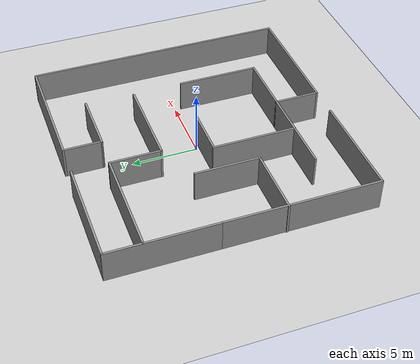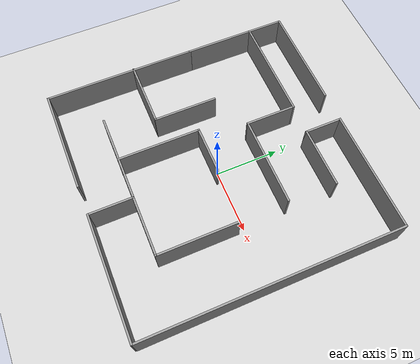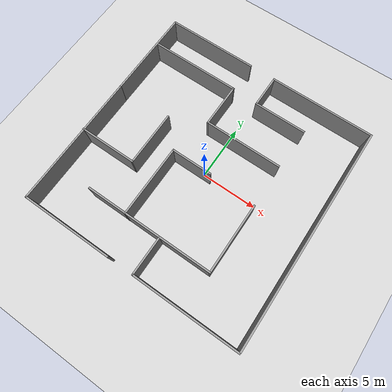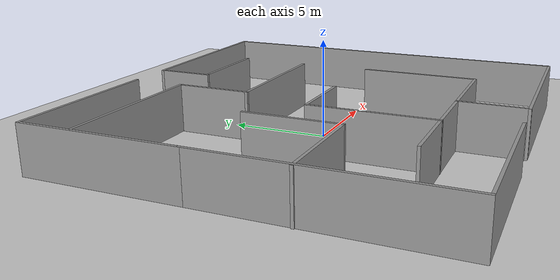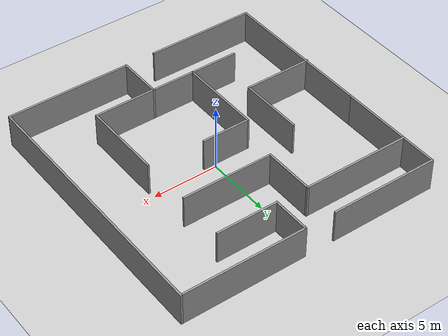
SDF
<sdf version="1.7">
 <world name="default">
  <light name="sun" type="directional">
   <pose>0 0 10 0 -0 0</pose>
   <diffuse>0.8 0.8 0.8 1</diffuse>
   <specular>0.2 0.2 0.2 1</specular>
   <attenuation>
    <range>1000</range>
    <constant>0.9</constant>
    <linear>0.01</linear>
    <quadratic>0.001</quadratic>
   </attenuation>
   <direction>-0.5 0.1 -0.9</direction>
   <spot><inner_angle>0</inner_angle><outer_angle>0</outer_angle><falloff>0</falloff></spot>
  </light>
  <model name="ground_plane">
   <static>1</static>
   <link name="link">
    <collision name="collision">
     <geometry><plane><normal>0 0 1</normal><size>100 100</size></plane></geometry>
     <surface>
      <contact><collide_bitmask>65535</collide_bitmask></contact>
      <friction><ode><mu>100</mu><mu2>50</mu2></ode></friction>
     </surface>
    </collision>
    <visual name="visual">
     <cast_shadows>0</cast_shadows>
     <geometry><plane><normal>0 0 1</normal><size>100 100</size></plane></geometry>
     <material>
      <script><uri>file://media/materials/scripts/gazebo.material</uri><name>Gazebo/Grey</name></script>
     </material>
    </visual>
   </link>
  </model>
  <gravity>0 0 -9.8</gravity>
  <magnetic_field>6e-06 2.3e-05 -4.2e-05</magnetic_field>
  <atmosphere type="adiabatic"/>
  <physics type="ode">
   <max_step_size>0.001</max_step_size>
   <real_time_factor>1</real_time_factor>
   <real_time_update_rate>1000</real_time_update_rate>
  </physics>
  <scene><ambient>0.4 0.4 0.4 1</ambient><background>0.7 0.7 0.7 1</background><shadows>1</shadows></scene>
  <audio><device>default</device></audio>
  <spherical_coordinates>
   <surface_model>EARTH_WGS84</surface_model>
   <latitude_deg>0</latitude_deg>
   <longitude_deg>0</longitude_deg>
   <elevation>0</elevation>
   <heading_deg>0</heading_deg>
  </spherical_coordinates>
  <model name="my_world.world">
   <pose>-0.128247 -0.036667 0 0 -0 0</pose>
   <link name="Wall_139">
    <collision name="Wall_139_Collision">
     <geometry><box><size>12 0.15 2.5</size></box></geometry>
     <pose>0 0 1.25 0 -0 0</pose>
    </collision>
    <visual name="Wall_139_Visual">
     <pose>0 0 1.25 0 -0 0</pose>
     <geometry><box><size>12 0.15 2.5</size></box></geometry>
     <material>
      <script><uri>file://media/materials/scripts/gazebo.material</uri><name>Gazebo/Grey</name></script>
      <ambient>1 1 1 1</ambient>
     </material>
     <meta><layer>0</layer></meta>
    </visual>
    <pose>-9.89513 -4.05 0 0 -0 -1.5708</pose>
   </link>
   <link name="Wall_140">
    <collision name="Wall_140_Collision">
     <geometry><box><size>8.25 0.15 2.5</size></box></geometry>
     <pose>0 0 1.25 0 -0 0</pose>
    </collision>
    <visual name="Wall_140_Visual">
     <pose>0 0 1.25 0 -0 0</pose>
     <geometry><box><size>8.25 0.15 2.5</size></box></geometry>
     <material>
      <script><uri>file://media/materials/scripts/gazebo.material</uri><name>Gazebo/Grey</name></script>
      <ambient>1 1 1 1</ambient>
     </material>
     <meta><layer>0</layer></meta>
    </visual>
    <pose>-5.84513 -9.975 0 0 -0 0</pose>
   </link>
   <link name="Wall_148">
    <collision name="Wall_148_Collision">
     <geometry><box><size>20 0.15 2.5</size></box></geometry>
     <pose>0 0 1.25 0 -0 0</pose>
    </collision>
    <visual name="Wall_148_Visual">
     <pose>0 0 1.25 0 -0 0</pose>
     <geometry><box><size>20 0.15 2.5</size></box></geometry>
     <material>
      <script><uri>file://media/materials/scripts/gazebo.material</uri><name>Gazebo/Grey</name></script>
      <ambient>1 1 1 1</ambient>
     </material>
     <meta><layer>0</layer></meta>
    </visual>
    <pose>9.95487 0.05 0 0 -0 -1.5708</pose>
   </link>
   <link name="Wall_150">
    <collision name="Wall_150_Collision">
     <geometry><box><size>9.5 0.15 2.5</size></box></geometry>
     <pose>0 0 1.25 0 -0 0</pose>
    </collision>
    <visual name="Wall_150_Visual">
     <pose>0 0 1.25 0 -0 0</pose>
     <geometry><box><size>9.5 0.15 2.5</size></box></geometry>
     <material>
      <script><uri>file://media/materials/scripts/gazebo.material</uri><name>Gazebo/Grey</name></script>
      <ambient>1 1 1 1</ambient>
     </material>
     <meta><layer>0</layer></meta>
    </visual>
    <pose>5.25112 -9.9599 0 0 -0 0</pose>
   </link>
   <link name="Wall_152">
    <collision name="Wall_152_Collision">
     <geometry><box><size>8.25 0.15 2.5</size></box></geometry>
     <pose>0 0 1.25 0 -0 0</pose>
    </collision>
    <visual name="Wall_152_Visual">
     <pose>0 0 1.25 0 -0 0</pose>
     <geometry><box><size>8.25 0.15 2.5</size></box></geometry>
     <material>
      <script><uri>file://media/materials/scripts/gazebo.material</uri><name>Gazebo/Grey</name></script>
      <ambient>1 1 1 1</ambient>
     </material>
     <meta><layer>0</layer></meta>
    </visual>
    <pose>-5.84513 9.975 0 0 -0 0</pose>
   </link>
   <link name="Wall_154">
    <collision name="Wall_154_Collision">
     <geometry><box><size>9.5 0.15 2.5</size></box></geometry>
     <pose>0 0 1.25 0 -0 0</pose>
    </collision>
    <visual name="Wall_154_Visual">
     <pose>0 0 1.25 0 -0 0</pose>
     <geometry><box><size>9.5 0.15 2.5</size></box></geometry>
     <material>
      <script><uri>file://media/materials/scripts/gazebo.material</uri><name>Gazebo/Grey</name></script>
      <ambient>1 1 1 1</ambient>
     </material>
     <meta><layer>0</layer></meta>
    </visual>
    <pose>5.27987 9.975 0 0 -0 3.14159</pose>
   </link>
   <link name="Wall_156">
    <collision name="Wall_156_Collision">
     <geometry><box><size>3 0.15 2.5</size></box></geometry>
     <pose>0 0 1.25 0 -0 0</pose>
    </collision>
    <visual name="Wall_156_Visual">
     <pose>0 0 1.25 0 -0 0</pose>
     <geometry><box><size>3 0.15 2.5</size></box></geometry>
     <material>
      <script><uri>file://media/materials/scripts/gazebo.material</uri><name>Gazebo/Grey</name></script>
      <ambient>1 1 1 1</ambient>
     </material>
     <meta><layer>0</layer></meta>
    </visual>
    <pose>0.604873 8.55 0 0 -0 -1.5708</pose>
   </link>
   <link name="Wall_157">
    <collision name="Wall_157_Collision">
     <geometry><box><size>4.75 0.15 2.5</size></box></geometry>
     <pose>0 0 1.25 0 -0 0</pose>
    </collision>
    <visual name="Wall_157_Visual">
     <pose>0 0 1.25 0 -0 0</pose>
     <geometry><box><size>4.75 0.15 2.5</size></box></geometry>
     <material>
      <script><uri>file://media/materials/scripts/gazebo.material</uri><name>Gazebo/Grey</name></script>
      <ambient>1 1 1 1</ambient>
     </material>
     <meta><layer>0</layer></meta>
    </visual>
    <pose>2.90487 7.125 0 0 -0 0</pose>
   </link>
   <link name="Wall_159">
    <collision name="Wall_159_Collision">
     <geometry><box><size>7 0.15 2.5</size></box></geometry>
     <pose>0 0 1.25 0 -0 0</pose>
    </collision>
    <visual name="Wall_159_Visual">
     <pose>0 0 1.25 0 -0 0</pose>
     <geometry><box><size>7 0.15 2.5</size></box></geometry>
     <material>
      <script><uri>file://media/materials/scripts/gazebo.material</uri><name>Gazebo/Grey</name></script>
      <ambient>1 1 1 1</ambient>
     </material>
     <meta><layer>0</layer></meta>
    </visual>
    <pose>1.63279 3.37156 0 0 -0 3.14159</pose>
   </link>
   <link name="Wall_160">
    <collision name="Wall_160_Collision">
     <geometry><box><size>4 0.15 2.5</size></box></geometry>
     <pose>0 0 1.25 0 -0 0</pose>
    </collision>
    <visual name="Wall_160_Visual">
     <pose>0 0 1.25 0 -0 0</pose>
     <geometry><box><size>4 0.15 2.5</size></box></geometry>
     <material>
      <script><uri>file://media/materials/scripts/gazebo.material</uri><name>Gazebo/Grey</name></script>
      <ambient>1 1 1 1</ambient>
     </material>
     <meta><layer>0</layer></meta>
    </visual>
    <pose>-1.79221 5.29656 0 0 -0 1.5708</pose>
   </link>
   <link name="Wall_163">
    <collision name="Wall_163_Collision">
     <geometry><box><size>8.25 0.15 2.5</size></box></geometry>
     <pose>0 0 1.25 0 -0 0</pose>
    </collision>
    <visual name="Wall_163_Visual">
     <pose>0 0 1.25 0 -0 0</pose>
     <geometry><box><size>8.25 0.15 2.5</size></box></geometry>
     <material>
      <script><uri>file://media/materials/scripts/gazebo.material</uri><name>Gazebo/Grey</name></script>
      <ambient>1 1 1 1</ambient>
     </material>
     <meta><layer>0</layer></meta>
    </visual>
    <pose>-5.84221 7.22156 0 0 -0 3.14159</pose>
   </link>
   <link name="Wall_165">
    <collision name="Wall_165_Collision">
     <geometry><box><size>5.25 0.15 2.5</size></box></geometry>
     <pose>0 0 1.25 0 -0 0</pose>
    </collision>
    <visual name="Wall_165_Visual">
     <pose>0 0 1.25 0 -0 0</pose>
     <geometry><box><size>5.25 0.15 2.5</size></box></geometry>
     <material>
      <script><uri>file://media/materials/scripts/gazebo.material</uri><name>Gazebo/Grey</name></script>
      <ambient>1 1 1 1</ambient>
     </material>
     <meta><layer>0</layer></meta>
    </visual>
    <pose>-7.40487 -2.94509 0 0 -0 0</pose>
   </link>
   <link name="Wall_166">
    <collision name="Wall_166_Collision">
     <geometry><box><size>5 0.15 2.5</size></box></geometry>
     <pose>0 0 1.25 0 -0 0</pose>
    </collision>
    <visual name="Wall_166_Visual">
     <pose>0 0 1.25 0 -0 0</pose>
     <geometry><box><size>5 0.15 2.5</size></box></geometry>
     <material>
      <script><uri>file://media/materials/scripts/gazebo.material</uri><name>Gazebo/Grey</name></script>
      <ambient>1 1 1 1</ambient>
     </material>
     <meta><layer>0</layer></meta>
    </visual>
    <pose>-4.85487 -0.520091 0 0 -0 1.5708</pose>
   </link>
   <link name="Wall_168">
    <collision name="Wall_168_Collision">
     <geometry><box><size>3.5 0.15 2.5</size></box></geometry>
     <pose>0 0 1.25 0 -0 0</pose>
    </collision>
    <visual name="Wall_168_Visual">
     <pose>0 0 1.25 0 -0 0</pose>
     <geometry><box><size>3.5 0.15 2.5</size></box></geometry>
     <material>
      <script><uri>file://media/materials/scripts/gazebo.material</uri><name>Gazebo/Grey</name></script>
      <ambient>1 1 1 1</ambient>
     </material>
     <meta><layer>0</layer></meta>
    </visual>
    <pose>0.576121 -8.2849 0 0 -0 1.5708</pose>
   </link>
   <link name="Wall_169">
    <collision name="Wall_169_Collision">
     <geometry><box><size>7 0.15 2.5</size></box></geometry>
     <pose>0 0 1.25 0 -0 0</pose>
    </collision>
    <visual name="Wall_169_Visual">
     <pose>0 0 1.25 0 -0 0</pose>
     <geometry><box><size>7 0.15 2.5</size></box></geometry>
     <material>
      <script><uri>file://media/materials/scripts/gazebo.material</uri><name>Gazebo/Grey</name></script>
      <ambient>1 1 1 1</ambient>
     </material>
     <meta><layer>0</layer></meta>
    </visual>
    <pose>-2.84888 -6.6099 0 0 -0 3.14159</pose>
   </link>
   <link name="Wall_174">
    <collision name="Wall_174_Collision">
     <geometry><box><size>4.75 0.15 2.5</size></box></geometry>
     <pose>0 0 1.25 0 -0 0</pose>
    </collision>
    <visual name="Wall_174_Visual">
     <pose>0 0 1.25 0 -0 0</pose>
     <geometry><box><size>4.75 0.15 2.5</size></box></geometry>
     <material>
      <script><uri>file://media/materials/scripts/gazebo.material</uri><name>Gazebo/Grey</name></script>
      <ambient>1 1 1 1</ambient>
     </material>
     <meta><layer>0</layer></meta>
    </visual>
    <pose>2.87612 -6.6099 0 0 -0 0</pose>
   </link>
   <link name="Wall_175">
    <collision name="Wall_175_Collision">
     <geometry><box><size>6.25 0.15 2.5</size></box></geometry>
     <pose>0 0 1.25 0 -0 0</pose>
    </collision>
    <visual name="Wall_175_Visual">
     <pose>0 0 1.25 0 -0 0</pose>
     <geometry><box><size>6.25 0.15 2.5</size></box></geometry>
     <material>
      <script><uri>file://media/materials/scripts/gazebo.material</uri><name>Gazebo/Grey</name></script>
      <ambient>1 1 1 1</ambient>
     </material>
     <meta><layer>0</layer></meta>
    </visual>
    <pose>5.17612 -3.5599 0 0 -0 1.5708</pose>
   </link>
   <link name="Wall_177">
    <collision name="Wall_177_Collision">
     <geometry><box><size>6.5 0.15 2.5</size></box></geometry>
     <pose>0 0 1.25 0 -0 0</pose>
    </collision>
    <visual name="Wall_177_Visual">
     <pose>0 0 1.25 0 -0 0</pose>
     <geometry><box><size>6.5 0.15 2.5</size></box></geometry>
     <material>
      <script><uri>file://media/materials/scripts/gazebo.material</uri><name>Gazebo/Grey</name></script>
      <ambient>1 1 1 1</ambient>
     </material>
     <meta><layer>0</layer></meta>
    </visual>
    <pose>-2.7206 -3.44872 0 0 -0 1.5708</pose>
   </link>
   <link name="Wall_178">
    <collision name="Wall_178_Collision">
     <geometry><box><size>3.75 0.15 2.5</size></box></geometry>
     <pose>0 0 1.25 0 -0 0</pose>
    </collision>
    <visual name="Wall_178_Visual">
     <pose>0 0 1.25 0 -0 0</pose>
     <geometry><box><size>3.75 0.15 2.5</size></box></geometry>
     <material>
      <script><uri>file://media/materials/scripts/gazebo.material</uri><name>Gazebo/Grey</name></script>
      <ambient>1 1 1 1</ambient>
     </material>
     <meta><layer>0</layer></meta>
    </visual>
    <pose>-0.920601 -0.273722 0 0 -0 0</pose>
   </link>
   <link name="Wall_3">
    <collision name="Wall_3_Collision">
     <geometry><box><size>8.25 0.15 2.5</size></box></geometry>
     <pose>0 0 1.25 0 -0 0</pose>
    </collision>
    <visual name="Wall_3_Visual">
     <pose>0 0 1.25 0 -0 0</pose>
     <geometry><box><size>8.25 0.15 2.5</size></box></geometry>
     <material>
      <script><uri>file://media/materials/scripts/gazebo.material</uri><name>Gazebo/Grey</name></script>
      <ambient>1 1 1 1</ambient>
     </material>
     <meta><layer>0</layer></meta>
    </visual>
    <pose>-9.89513 5.925 0 0 -0 1.5708</pose>
   </link>
   <static>1</static>
  </model>
 </world>
</sdf>
